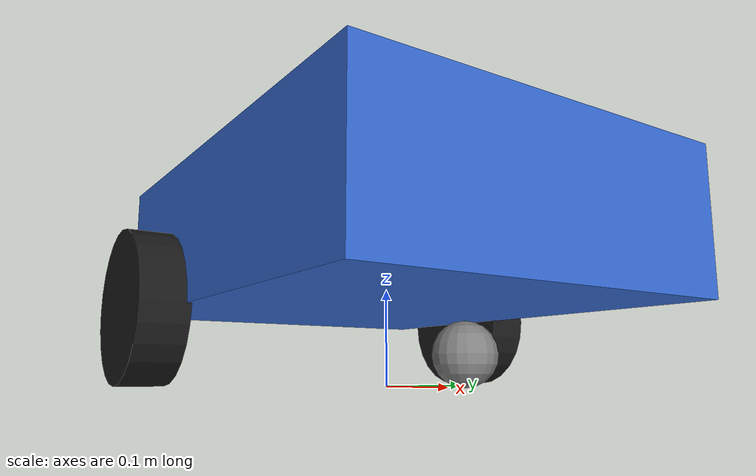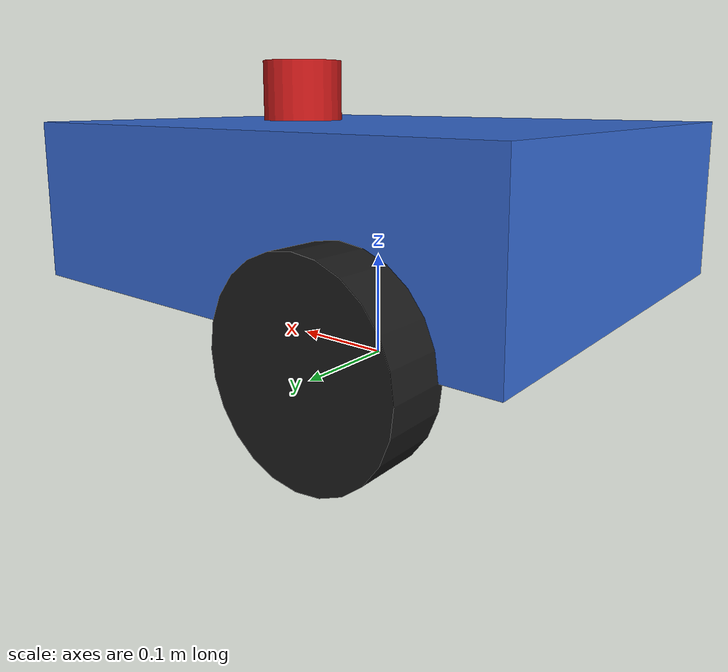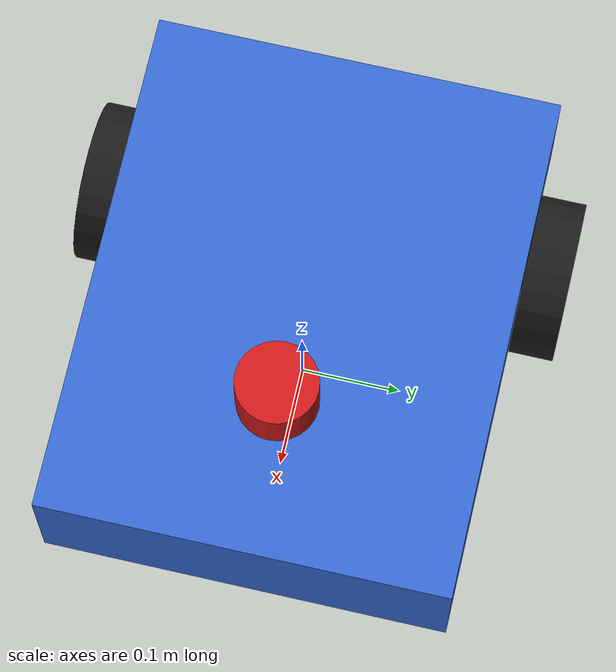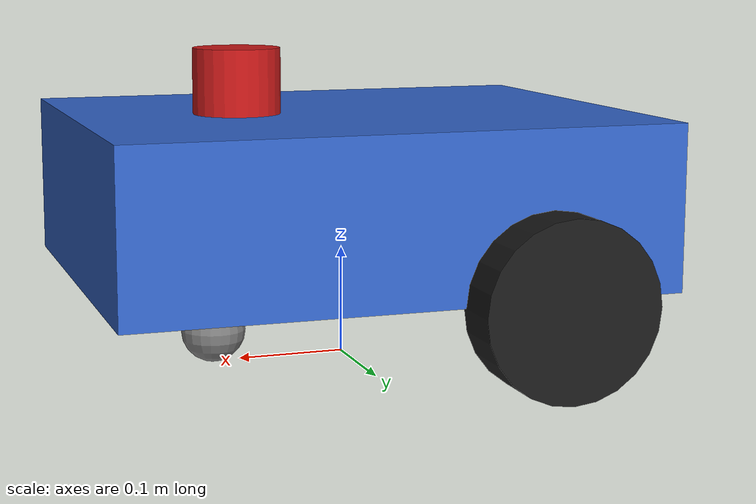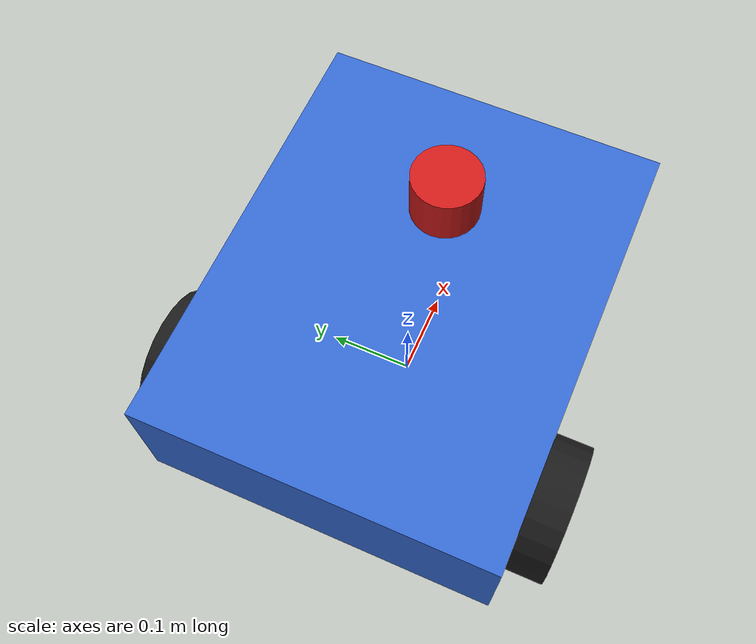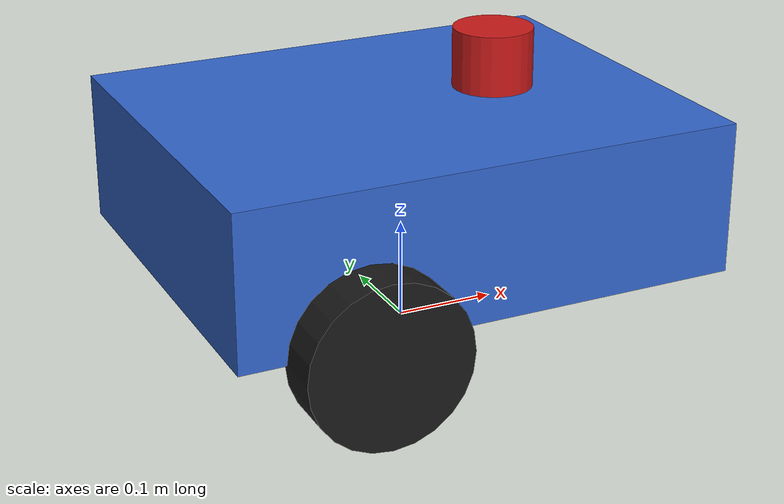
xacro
<?xml version="1.0"?>
<robot name="warehouse_robot" xmlns:xacro="http://www.ros.org/wiki/xacro">

  <!-- Multi-robot namespace support -->
  <xacro:arg name="robot_namespace" default="robot1"/>
  <xacro:arg name="tf_prefix" default="robot1_"/>

  <!-- Robot Properties -->
  <xacro:property name="base_width" value="0.4"/>
  <xacro:property name="base_length" value="0.5"/>
  <xacro:property name="base_height" value="0.15"/>
  <xacro:property name="wheel_radius" value="0.08"/>
  <xacro:property name="wheel_width" value="0.05"/>
  <xacro:property name="wheel_separation" value="0.44"/>
  <xacro:property name="caster_radius" value="0.03"/>

  <!-- Materials -->
  <material name="blue">
    <color rgba="0.2 0.4 0.8 1.0"/>
  </material>
  <material name="black">
    <color rgba="0.1 0.1 0.1 1.0"/>
  </material>
  <material name="grey">
    <color rgba="0.5 0.5 0.5 1.0"/>
  </material>
  <material name="red">
    <color rgba="0.8 0.1 0.1 1.0"/>
  </material>

  <!-- Base Footprint (ground plane reference) -->
  <link name="base_footprint"/>

  <joint name="base_footprint_joint" type="fixed">
    <parent link="base_footprint"/>
    <child link="base_link"/>
    <!-- Raise base_link so wheel bottoms sit at z=0 (ground) -->
    <origin xyz="0 0 ${wheel_radius}" rpy="0 0 0"/>
  </joint>

  <!-- Base Link (chassis center) -->
  <link name="base_link">
    <visual>
      <origin xyz="0 0 ${base_height/2}" rpy="0 0 0"/>
      <geometry>
        <box size="${base_length} ${base_width} ${base_height}"/>
      </geometry>
      <material name="blue"/>
    </visual>
    <collision>
      <origin xyz="0 0 ${base_height/2}" rpy="0 0 0"/>
      <geometry>
        <box size="${base_length} ${base_width} ${base_height}"/>
      </geometry>
    </collision>
    <inertial>
      <origin xyz="0 0 ${base_height/2}" rpy="0 0 0"/>
      <mass value="10.0"/>
      <!-- Box inertia: ixx=(m/12)*(h^2+d^2), iyy=(m/12)*(w^2+d^2), izz=(m/12)*(w^2+h^2) -->
      <!-- w=0.4, l=0.5, h=0.15 => ixx=(10/12)*(0.15^2+0.5^2)=0.229, iyy=(10/12)*(0.4^2+0.5^2)=0.342, izz=(10/12)*(0.4^2+0.15^2)=0.152 -->
      <inertia
        ixx="0.229" ixy="0.0" ixz="0.0"
        iyy="0.342" iyz="0.0"
        izz="0.152"/>
    </inertial>
  </link>

  <!-- Left Rear Drive Wheel -->
  <link name="left_wheel">
    <visual>
      <origin xyz="0 0 0" rpy="${pi/2} 0 0"/>
      <geometry>
        <cylinder radius="${wheel_radius}" length="${wheel_width}"/>
      </geometry>
      <material name="black"/>
    </visual>
    <collision>
      <origin xyz="0 0 0" rpy="${pi/2} 0 0"/>
      <geometry>
        <cylinder radius="${wheel_radius}" length="${wheel_width}"/>
      </geometry>
    </collision>
    <inertial>
      <mass value="1.0"/>
      <!-- Cylinder (axis Y after rpy pi/2 0 0): ixx=iyy=(m/12)*(3r^2+h^2), izz=(m/2)*r^2 -->
      <!-- r=0.08, h=0.05 => ixx=iyy=(1/12)*(3*0.0064+0.0025)=0.00181, izz=(1/2)*0.0064=0.0032 -->
      <inertia
        ixx="0.00181" ixy="0.0" ixz="0.0"
        iyy="0.00181" iyz="0.0"
        izz="0.0032"/>
    </inertial>
  </link>

  <!-- Left wheel is at the REAR of the robot (negative x) -->
  <joint name="left_wheel_joint" type="continuous">
    <parent link="base_link"/>
    <child link="left_wheel"/>
    <!-- Rear position: x = -(base_length/4), y = +wheel_separation/2, z = 0 (wheel axis at base_link height) -->
    <origin xyz="${-base_length/4} ${wheel_separation/2} 0" rpy="0 0 0"/>
    <axis xyz="0 1 0"/>
    <dynamics damping="0.1" friction="0.1"/>
  </joint>

  <!-- Right Rear Drive Wheel -->
  <link name="right_wheel">
    <visual>
      <origin xyz="0 0 0" rpy="${pi/2} 0 0"/>
      <geometry>
        <cylinder radius="${wheel_radius}" length="${wheel_width}"/>
      </geometry>
      <material name="black"/>
    </visual>
    <collision>
      <origin xyz="0 0 0" rpy="${pi/2} 0 0"/>
      <geometry>
        <cylinder radius="${wheel_radius}" length="${wheel_width}"/>
      </geometry>
    </collision>
    <inertial>
      <mass value="1.0"/>
      <inertia
        ixx="0.00181" ixy="0.0" ixz="0.0"
        iyy="0.00181" iyz="0.0"
        izz="0.0032"/>
    </inertial>
  </link>

  <!-- Right wheel is at the REAR of the robot (negative x) -->
  <joint name="right_wheel_joint" type="continuous">
    <parent link="base_link"/>
    <child link="right_wheel"/>
    <!-- Rear position: x = -(base_length/4), y = -wheel_separation/2, z = 0 -->
    <origin xyz="${-base_length/4} ${-wheel_separation/2} 0" rpy="0 0 0"/>
    <axis xyz="0 1 0"/>
    <dynamics damping="0.1" friction="0.1"/>
  </joint>

  <!-- Front Caster Wheel (passive, low friction sphere) -->
  <link name="front_caster">
    <visual>
      <origin xyz="0 0 0" rpy="0 0 0"/>
      <geometry>
        <sphere radius="${caster_radius}"/>
      </geometry>
      <material name="grey"/>
    </visual>
    <collision>
      <origin xyz="0 0 0" rpy="0 0 0"/>
      <geometry>
        <sphere radius="${caster_radius}"/>
      </geometry>
    </collision>
    <inertial>
      <mass value="0.2"/>
      <!-- Sphere: ixx=iyy=izz=(2/5)*m*r^2 = (2/5)*0.2*0.0009 = 0.000072 -->
      <inertia
        ixx="0.000072" ixy="0.0" ixz="0.0"
        iyy="0.000072" iyz="0.0"
        izz="0.000072"/>
    </inertial>
  </link>

  <!-- Front caster at the FRONT of the robot (positive x) -->
  <!-- z offset: caster bottom must touch ground => z = -(wheel_radius - caster_radius) -->
  <joint name="front_caster_joint" type="fixed">
    <parent link="base_link"/>
    <child link="front_caster"/>
    <origin xyz="${base_length/4} 0 ${-(wheel_radius - caster_radius)}" rpy="0 0 0"/>
  </joint>

  <!-- LiDAR Link -->
  <link name="lidar_link">
    <visual>
      <origin xyz="0 0 0" rpy="0 0 0"/>
      <geometry>
        <cylinder radius="0.04" length="0.06"/>
      </geometry>
      <material name="red"/>
    </visual>
    <collision>
      <origin xyz="0 0 0" rpy="0 0 0"/>
      <geometry>
        <cylinder radius="0.04" length="0.06"/>
      </geometry>
    </collision>
    <inertial>
      <mass value="0.1"/>
      <inertia
        ixx="0.0001" ixy="0.0" ixz="0.0"
        iyy="0.0001" iyz="0.0"
        izz="0.0001"/>
    </inertial>
  </link>

  <joint name="lidar_joint" type="fixed">
    <parent link="base_link"/>
    <child link="lidar_link"/>
    <origin xyz="0.1 0 ${base_height + 0.03}" rpy="0 0 0"/>
  </joint>

  <!-- Gazebo Classic Plugins                                        -->

  <!-- Differential Drive Plugin -->
  <gazebo>
    <plugin name="differential_drive_controller" filename="libgazebo_ros_diff_drive.so">
      <ros>
        <namespace>$(arg robot_namespace)</namespace>
        <remapping>cmd_vel:=cmd_vel</remapping>
        <remapping>odom:=odom</remapping>
      </ros>

      <!-- Wheel joints (rear drive wheels only) -->
      <left_joint>left_wheel_joint</left_joint>
      <right_joint>right_wheel_joint</right_joint>

      <!-- Geometry — must match xacro properties -->
      <wheel_separation>${wheel_separation}</wheel_separation>
      <wheel_diameter>${2 * wheel_radius}</wheel_diameter>

      <!-- Torque and acceleration limits -->
      <max_wheel_torque>20</max_wheel_torque>
      <max_wheel_acceleration>1.0</max_wheel_acceleration>

      <!-- Odometry -->
      <publish_odom>true</publish_odom>
      <publish_odom_tf>true</publish_odom_tf>
      <publish_wheel_tf>false</publish_wheel_tf>
      <odometry_frame>$(arg robot_namespace)/odom</odometry_frame>
      <robot_base_frame>$(arg tf_prefix)base_footprint</robot_base_frame>
    </plugin>
  </gazebo>

  <!-- Gazebo material / friction for drive wheels -->
  <gazebo reference="left_wheel">
    <mu1>1.0</mu1>
    <mu2>1.0</mu2>
    <kp>1000000.0</kp>
    <kd>100.0</kd>
    <material>Gazebo/Black</material>
  </gazebo>

  <gazebo reference="right_wheel">
    <mu1>1.0</mu1>
    <mu2>1.0</mu2>
    <kp>1000000.0</kp>
    <kd>100.0</kd>
    <material>Gazebo/Black</material>
  </gazebo>

  <!-- Front caster: near-zero friction so it slides freely -->
  <gazebo reference="front_caster">
    <mu1>0.01</mu1>
    <mu2>0.01</mu2>
    <kp>1000000.0</kp>
    <kd>100.0</kd>
    <material>Gazebo/Grey</material>
  </gazebo>

  <!-- Chassis color in Gazebo -->
  <gazebo reference="base_link">
    <material>Gazebo/Blue</material>
  </gazebo>

  <!-- LiDAR sensor plugin -->
  <gazebo reference="lidar_link">
    <sensor type="ray" name="lidar_sensor">
      <pose>0 0 0 0 0 0</pose>
      <visualize>true</visualize>
      <update_rate>10</update_rate>
      <ray>
        <scan>
          <horizontal>
            <samples>360</samples>
            <resolution>1</resolution>
            <min_angle>-3.14159</min_angle>
            <max_angle>3.14159</max_angle>
          </horizontal>
        </scan>
        <range>
          <min>0.1</min>
          <max>10.0</max>
          <resolution>0.01</resolution>
        </range>
        <noise>
          <type>gaussian</type>
          <mean>0.0</mean>
          <stddev>0.01</stddev>
        </noise>
      </ray>
      <plugin name="gazebo_ros_lidar" filename="libgazebo_ros_ray_sensor.so">
        <ros>
          <namespace>$(arg robot_namespace)</namespace>
          <remapping>~/out:=scan</remapping>
        </ros>
        <output_type>sensor_msgs/LaserScan</output_type>
        <frame_name>$(arg tf_prefix)lidar_link</frame_name>
      </plugin>
    </sensor>
    <material>Gazebo/Red</material>
  </gazebo>

</robot>
